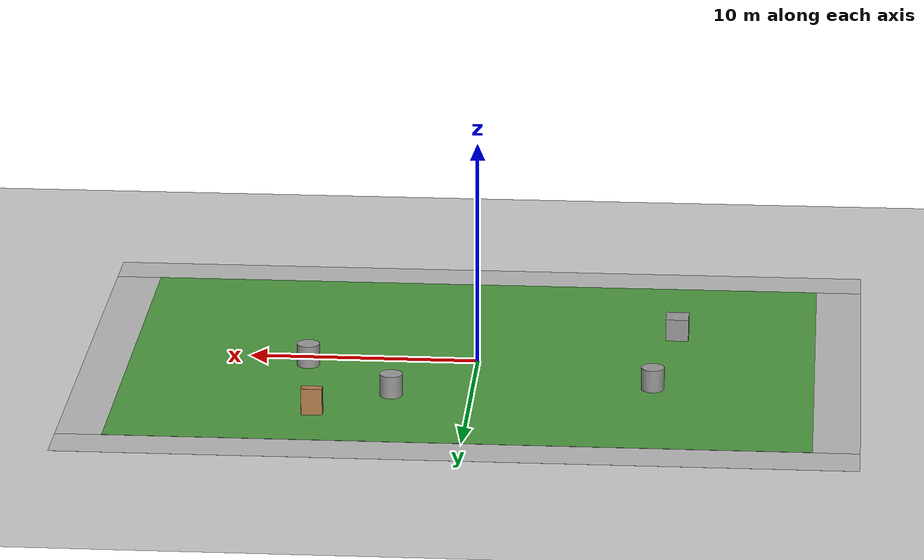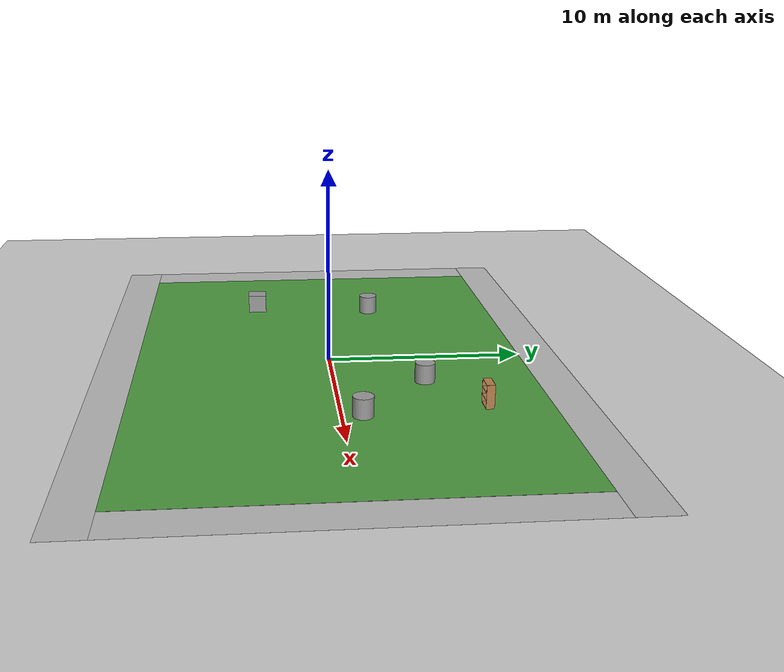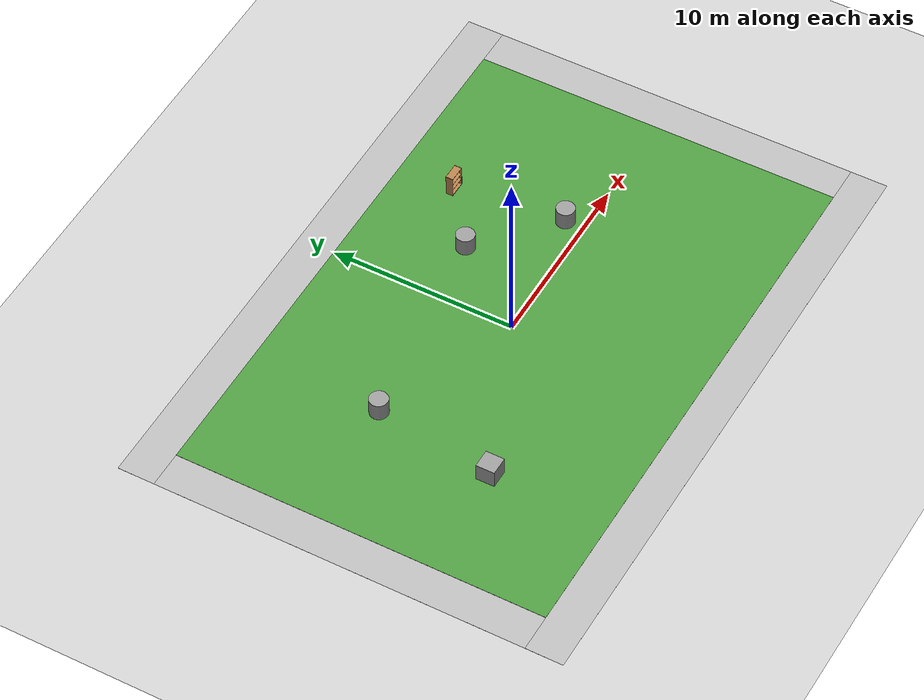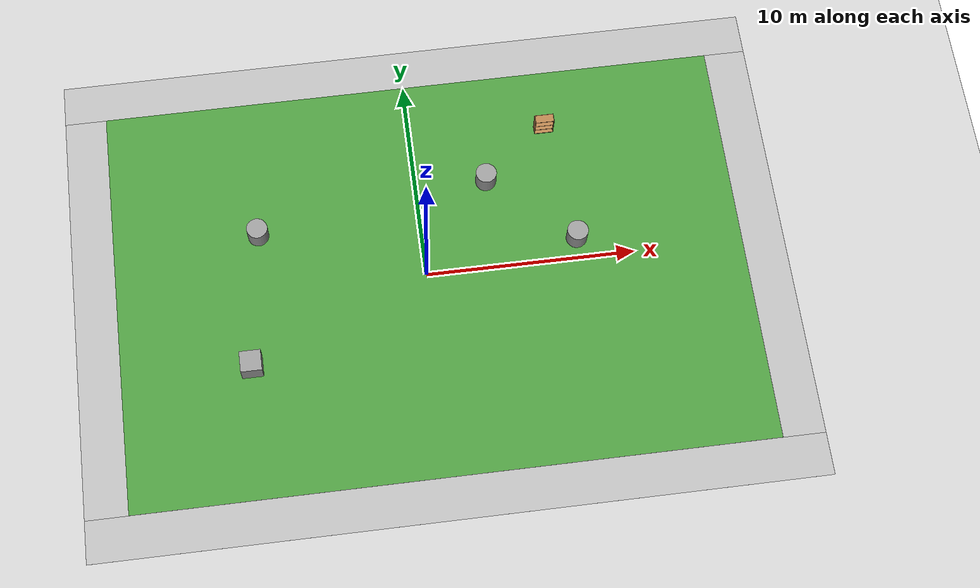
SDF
<sdf version="1.6">
 <world name="default">
  <light name="sun" type="directional">
   <pose>0 0 10 0 -0 0</pose>
   <diffuse>0.8 0.8 0.8 1</diffuse>
   <specular>0.2 0.2 0.2 1</specular>
   <attenuation>
    <range>1000</range>
    <constant>0.9</constant>
    <linear>0.01</linear>
    <quadratic>0.001</quadratic>
   </attenuation>
   <direction>-0.5 0.1 -0.9</direction>
  </light>
  <model name="ground_plane">
   <static>1</static>
   <link name="link">
    <collision name="collision">
     <geometry><plane><normal>0 0 1</normal><size>100 100</size></plane></geometry>
     <surface>
      <contact><collide_bitmask>65535</collide_bitmask></contact>
      <friction><ode><mu>100</mu><mu2>50</mu2></ode></friction>
     </surface>
    </collision>
    <visual name="visual">
     <cast_shadows>0</cast_shadows>
     <geometry><plane><normal>0 0 1</normal><size>100 100</size></plane></geometry>
     <material>
      <script><uri>file://media/materials/scripts/gazebo.material</uri><name>Gazebo/Grey</name></script>
     </material>
    </visual>
   </link>
  </model>
  <gravity>0 0 -9.8</gravity>
  <magnetic_field>6e-06 2.3e-05 -4.2e-05</magnetic_field>
  <atmosphere type="adiabatic"/>
  <physics name="default_physics" default="0" type="ode">
   <max_step_size>0.001</max_step_size>
   <real_time_factor>1</real_time_factor>
   <real_time_update_rate>1000</real_time_update_rate>
  </physics>
  <scene><ambient>0.4 0.4 0.4 1</ambient><background>0.7 0.7 0.7 1</background><shadows>1</shadows></scene>
  <audio><device>default</device></audio>
  <spherical_coordinates>
   <surface_model>EARTH_WGS84</surface_model>
   <latitude_deg>0</latitude_deg>
   <longitude_deg>0</longitude_deg>
   <elevation>0</elevation>
   <heading_deg>0</heading_deg>
  </spherical_coordinates>
  <model name="bookshelf">
   <static>1</static>
   <link name="link">
    <inertial><mass>1</mass></inertial>
    <collision name="back">
     <pose>0 0.005 0.6 0 -0 0</pose>
     <geometry><box><size>0.9 0.01 1.2</size></box></geometry>
    </collision>
    <visual name="visual1">
     <pose>0 0.005 0.6 0 -0 0</pose>
     <geometry><box><size>0.9 0.01 1.2</size></box></geometry>
     <material>
      <script><uri>file://media/materials/scripts/gazebo.material</uri><name>Gazebo/Wood</name></script>
     </material>
    </visual>
    <collision name="left_side">
     <pose>0.45 -0.195 0.6 0 -0 0</pose>
     <geometry><box><size>0.02 0.4 1.2</size></box></geometry>
    </collision>
    <visual name="visual2">
     <pose>0.45 -0.195 0.6 0 -0 0</pose>
     <geometry><box><size>0.02 0.4 1.2</size></box></geometry>
     <material>
      <script><uri>file://media/materials/scripts/gazebo.material</uri><name>Gazebo/Wood</name></script>
     </material>
    </visual>
    <collision name="right_side">
     <pose>-0.45 -0.195 0.6 0 -0 0</pose>
     <geometry><box><size>0.02 0.4 1.2</size></box></geometry>
    </collision>
    <visual name="visual3">
     <pose>-0.45 -0.195 0.6 0 -0 0</pose>
     <geometry><box><size>0.02 0.4 1.2</size></box></geometry>
     <material>
      <script><uri>file://media/materials/scripts/gazebo.material</uri><name>Gazebo/Wood</name></script>
     </material>
    </visual>
    <collision name="bottom">
     <pose>0 -0.195 0.03 0 -0 0</pose>
     <geometry><box><size>0.88 0.4 0.06</size></box></geometry>
    </collision>
    <visual name="visual4">
     <pose>0 -0.195 0.03 0 -0 0</pose>
     <geometry><box><size>0.88 0.4 0.06</size></box></geometry>
     <material>
      <script><uri>file://media/materials/scripts/gazebo.material</uri><name>Gazebo/Wood</name></script>
     </material>
    </visual>
    <collision name="top">
     <pose>0 -0.195 1.19 0 -0 0</pose>
     <geometry><box><size>0.88 0.4 0.02</size></box></geometry>
    </collision>
    <visual name="visual5">
     <pose>0 -0.195 1.19 0 -0 0</pose>
     <geometry><box><size>0.88 0.4 0.02</size></box></geometry>
     <material>
      <script><uri>file://media/materials/scripts/gazebo.material</uri><name>Gazebo/Wood</name></script>
     </material>
    </visual>
    <collision name="low_shelf">
     <pose>0 -0.195 0.43 0 -0 0</pose>
     <geometry><box><size>0.88 0.4 0.02</size></box></geometry>
    </collision>
    <visual name="visual6">
     <pose>0 -0.195 0.43 0 -0 0</pose>
     <geometry><box><size>0.88 0.4 0.02</size></box></geometry>
     <material>
      <script><uri>file://media/materials/scripts/gazebo.material</uri><name>Gazebo/Wood</name></script>
     </material>
    </visual>
    <collision name="high_shelf">
     <pose>0 -0.195 0.8 0 -0 0</pose>
     <geometry><box><size>0.88 0.4 0.02</size></box></geometry>
    </collision>
    <visual name="visual7">
     <pose>0 -0.195 0.8 0 -0 0</pose>
     <geometry><box><size>0.88 0.4 0.02</size></box></geometry>
     <material>
      <script><uri>file://media/materials/scripts/gazebo.material</uri><name>Gazebo/Wood</name></script>
     </material>
    </visual>
   </link>
   <pose>6.61017 7.14081 0 0 -0 0</pose>
  </model>
  <model name="unit_cylinder">
   <pose>-7.79085 2.94693 0.509998 3e-06 -2e-06 0</pose>
   <link name="link">
    <inertial>
     <mass>1</mass>
     <inertia><ixx>0.145833</ixx><ixy>0</ixy><ixz>0</ixz><iyy>0.145833</iyy><iyz>0</iyz><izz>0.125</izz></inertia>
    </inertial>
    <collision name="collision">
     <geometry><cylinder><radius>0.5</radius><length>1</length></cylinder></geometry>
    </collision>
    <visual name="visual">
     <geometry><cylinder><radius>0.5</radius><length>1</length></cylinder></geometry>
     <material>
      <script><name>Gazebo/Grey</name><uri>file://media/materials/scripts/gazebo.material</uri></script>
     </material>
    </visual>
   </link>
  </model>
  <model name="unit_box">
   <pose>-8.63823 -3.61471 0.509995 1e-05 -0 0</pose>
   <link name="link">
    <inertial>
     <mass>1</mass>
     <inertia>
      <ixx>0.166667</ixx>
      <ixy>0</ixy>
      <ixz>0</ixz>
      <iyy>0.166667</iyy>
      <iyz>0</iyz>
      <izz>0.166667</izz>
     </inertia>
    </inertial>
    <collision name="collision"><geometry><box><size>1 1 1</size></box></geometry></collision>
    <visual name="visual">
     <geometry><box><size>1 1 1</size></box></geometry>
     <material>
      <script><name>Gazebo/Grey</name><uri>file://media/materials/scripts/gazebo.material</uri></script>
     </material>
    </visual>
   </link>
  </model>
  <model name="unit_cylinder_0">
   <pose>3.42356 4.49615 0.509998 3e-06 -2e-06 0</pose>
   <link name="link">
    <inertial>
     <mass>1</mass>
     <inertia><ixx>0.145833</ixx><ixy>0</ixy><ixz>0</ixz><iyy>0.145833</iyy><iyz>0</iyz><izz>0.125</izz></inertia>
    </inertial>
    <collision name="collision">
     <geometry><cylinder><radius>0.5</radius><length>1</length></cylinder></geometry>
    </collision>
    <visual name="visual">
     <geometry><cylinder><radius>0.5</radius><length>1</length></cylinder></geometry>
     <material>
      <script><name>Gazebo/Grey</name><uri>file://media/materials/scripts/gazebo.material</uri></script>
     </material>
    </visual>
   </link>
  </model>
  <model name="unit_cylinder_1">
   <pose>7.3511 1.00129 0.509998 3e-06 -2e-06 0</pose>
   <link name="link">
    <inertial>
     <mass>1</mass>
     <inertia><ixx>0.145833</ixx><ixy>0</ixy><ixz>0</ixz><iyy>0.145833</iyy><iyz>0</iyz><izz>0.125</izz></inertia>
    </inertial>
    <collision name="collision">
     <geometry><cylinder><radius>0.5</radius><length>1</length></cylinder></geometry>
    </collision>
    <visual name="visual">
     <geometry><cylinder><radius>0.5</radius><length>1</length></cylinder></geometry>
     <material>
      <script><name>Gazebo/Grey</name><uri>file://media/materials/scripts/gazebo.material</uri></script>
     </material>
    </visual>
   </link>
  </model>
  <model name="robocup_3d_field">
   <static>1</static>
   <link name="field">
    <pose>0 0 0.01 0 -0 0</pose>
    <collision name="collision">
     <geometry><plane><normal>0 0 1</normal><size>30 20</size></plane></geometry>
     <surface><friction><ode><mu>100</mu><mu2>50</mu2></ode></friction></surface>
    </collision>
    <visual name="base1">
     <pose>0 11 0.001 0 -0 0</pose>
     <cast_shadows>0</cast_shadows>
     <geometry><plane><normal>0 0 1</normal><size>34 2</size></plane></geometry>
     <material>
      <script>
       <uri>model://robocup_3Dsim_field/materials/scripts/</uri>
       <uri>model://robocup_3Dsim_field/materials/textures/</uri>
       <name>RoboCup/FieldBorder</name>
      </script>
     </material>
    </visual>
    <visual name="base2">
     <pose>0 -11 0.001 0 -0 0</pose>
     <cast_shadows>0</cast_shadows>
     <geometry><plane><normal>0 0 1</normal><size>34 2</size></plane></geometry>
     <material>
      <script>
       <uri>model://robocup_3Dsim_field/materials/scripts/</uri>
       <uri>model://robocup_3Dsim_field/materials/textures/</uri>
       <name>RoboCup/FieldBorder</name>
      </script>
     </material>
    </visual>
    <visual name="base3">
     <pose>16 0 0.001 0 -0 0</pose>
     <cast_shadows>0</cast_shadows>
     <geometry><plane><normal>0 0 1</normal><size>2 20</size></plane></geometry>
     <material>
      <script>
       <uri>model://robocup_3Dsim_field/materials/scripts/</uri>
       <uri>model://robocup_3Dsim_field/materials/textures/</uri>
       <name>RoboCup/FieldBorder</name>
      </script>
     </material>
    </visual>
    <visual name="base4">
     <pose>-16 0 0.001 0 -0 0</pose>
     <cast_shadows>0</cast_shadows>
     <geometry><plane><normal>0 0 1</normal><size>2 20</size></plane></geometry>
     <material>
      <script>
       <uri>model://robocup_3Dsim_field/materials/scripts/</uri>
       <uri>model://robocup_3Dsim_field/materials/textures/</uri>
       <name>RoboCup/FieldBorder</name>
      </script>
     </material>
    </visual>
    <visual name="carpet">
     <cast_shadows>0</cast_shadows>
     <geometry><plane><normal>0 0 1</normal><size>30 20</size></plane></geometry>
     <material>
      <script>
       <uri>model://robocup_3Dsim_field/materials/scripts/</uri>
       <uri>model://robocup_3Dsim_field/materials/textures/</uri>
       <name>RoboCup/Grass</name>
      </script>
     </material>
    </visual>
   </link>
   <pose>0.242114 0.048925 0 0 -0 0</pose>
  </model>
 </world>
</sdf>
